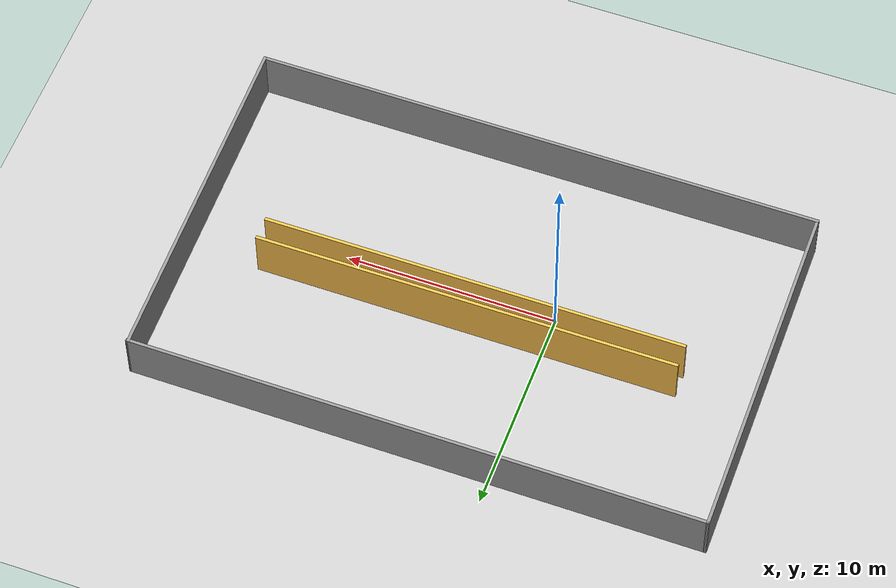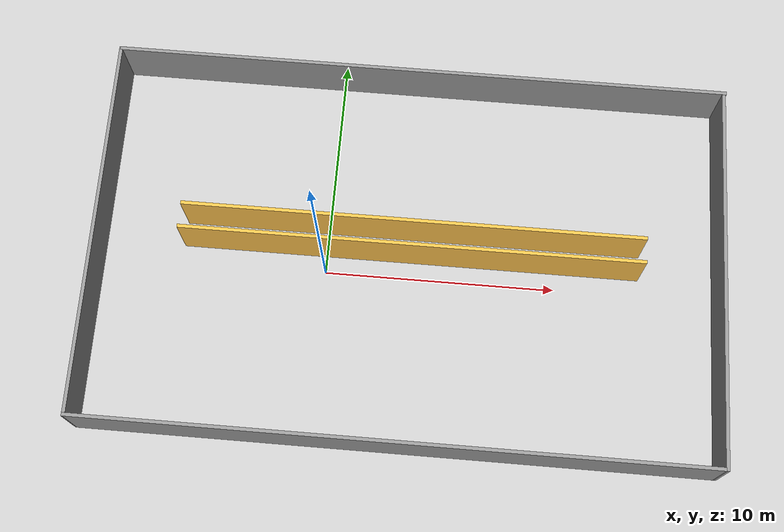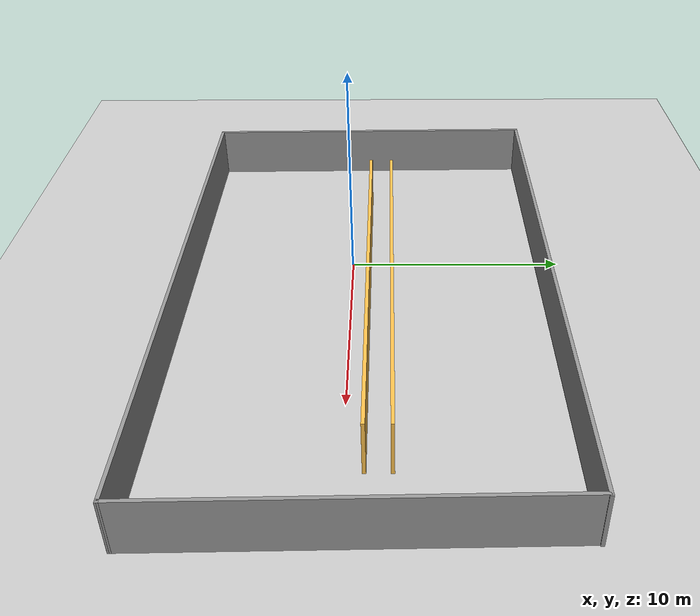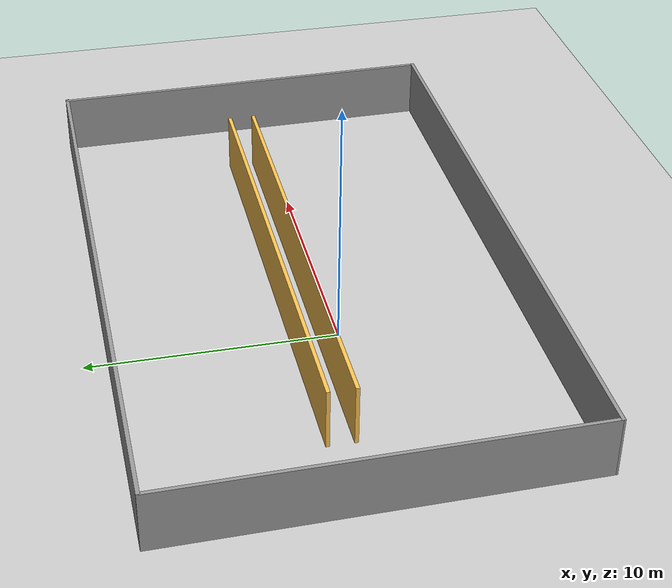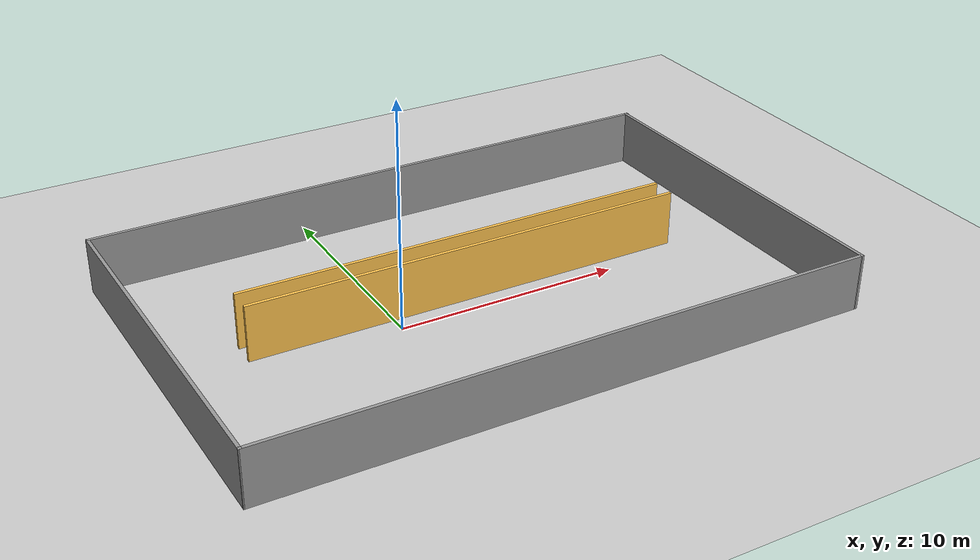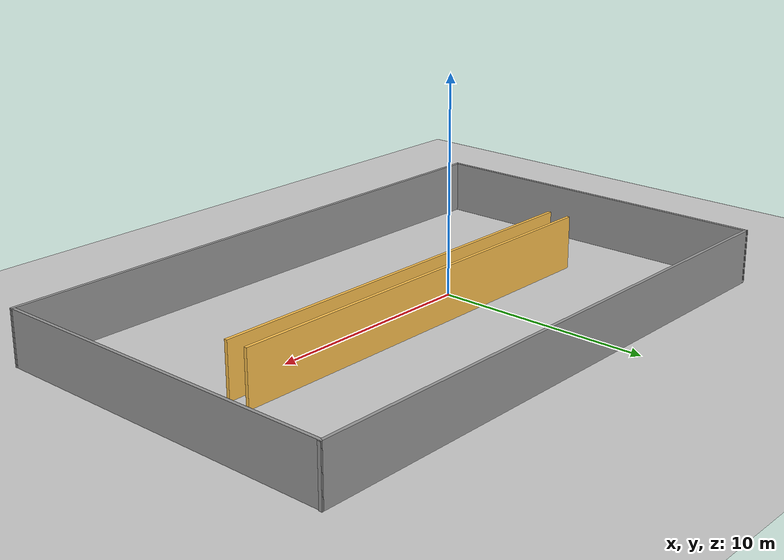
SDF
<sdf version="1.7">
 <world name="default">
  <light name="sun" type="directional">
   <pose>0 0 10 0 -0 0</pose>
   <diffuse>0.8 0.8 0.8 1</diffuse>
   <specular>0.2 0.2 0.2 1</specular>
   <attenuation>
    <range>1000</range>
    <constant>0.9</constant>
    <linear>0.01</linear>
    <quadratic>0.001</quadratic>
   </attenuation>
   <direction>-0.5 0.1 -0.9</direction>
   <spot><inner_angle>0</inner_angle><outer_angle>0</outer_angle><falloff>0</falloff></spot>
  </light>
  <model name="ground_plane">
   <static>1</static>
   <link name="link">
    <collision name="collision">
     <geometry><plane><normal>0 0 1</normal><size>100 100</size></plane></geometry>
     <surface>
      <contact><collide_bitmask>65535</collide_bitmask></contact>
      <friction><ode><mu>100</mu><mu2>50</mu2></ode></friction>
     </surface>
    </collision>
    <visual name="visual">
     <cast_shadows>0</cast_shadows>
     <geometry><plane><normal>0 0 1</normal><size>100 100</size></plane></geometry>
     <material>
      <script><uri>file://media/materials/scripts/gazebo.material</uri><name>Gazebo/Grey</name></script>
     </material>
    </visual>
   </link>
  </model>
  <gravity>0 0 -9.8</gravity>
  <magnetic_field>6e-06 2.3e-05 -4.2e-05</magnetic_field>
  <atmosphere type="adiabatic"/>
  <physics type="ode">
   <max_step_size>0.001</max_step_size>
   <real_time_factor>1</real_time_factor>
   <real_time_update_rate>1000</real_time_update_rate>
  </physics>
  <scene><ambient>0.4 0.4 0.4 1</ambient><background>0.7 0.7 0.7 1</background><shadows>1</shadows></scene>
  <spherical_coordinates>
   <surface_model>EARTH_WGS84</surface_model>
   <latitude_deg>0</latitude_deg>
   <longitude_deg>0</longitude_deg>
   <elevation>0</elevation>
   <heading_deg>0</heading_deg>
  </spherical_coordinates>
  <model name="wall">
   <pose>3.66791 0.979391 0 0 -0 0</pose>
   <link name="Wall_27">
    <collision name="Wall_27_Collision">
     <geometry><box><size>20 0.15 2.5</size></box></geometry>
     <pose>0 0 1.25 0 -0 0</pose>
    </collision>
    <visual name="Wall_27_Visual">
     <pose>0 0 1.25 0 -0 0</pose>
     <geometry><box><size>20 0.15 2.5</size></box></geometry>
     <material>
      <script><uri>file://media/materials/scripts/gazebo.material</uri><name>Gazebo/Grey</name></script>
      <ambient>1 0.764706 0.305882 1</ambient>
     </material>
     <meta><layer>0</layer></meta>
    </visual>
    <pose>-0.004152 -0.16043 0 0 -0 0</pose>
   </link>
   <link name="Wall_29">
    <collision name="Wall_29_Collision">
     <geometry><box><size>20 0.15 2.5</size></box></geometry>
     <pose>0 0 1.25 0 -0 0</pose>
    </collision>
    <visual name="Wall_29_Visual">
     <pose>0 0 1.25 0 -0 0</pose>
     <geometry><box><size>20 0.15 2.5</size></box></geometry>
     <material>
      <script><uri>file://media/materials/scripts/gazebo.material</uri><name>Gazebo/Grey</name></script>
      <ambient>1 0.764706 0.305882 1</ambient>
     </material>
     <meta><layer>0</layer></meta>
    </visual>
    <pose>0.004152 0.904391 0 0 -0 0</pose>
   </link>
   <static>1</static>
  </model>
  <model name="Untitled">
   <pose>3.53934 0.67007 0 0 -0 0</pose>
   <link name="Wall_5">
    <collision name="Wall_5_Collision">
     <geometry><box><size>27.0233 0.15 2.5</size></box></geometry>
     <pose>0 0 1.25 0 -0 0</pose>
    </collision>
    <visual name="Wall_5_Visual">
     <pose>0 0 1.25 0 -0 0</pose>
     <geometry><box><size>27.0233 0.15 2.5</size></box></geometry>
     <material>
      <script><uri>file://media/materials/scripts/gazebo.material</uri><name>Gazebo/Grey</name></script>
      <ambient>1 1 1 1</ambient>
     </material>
     <meta><layer>0</layer></meta>
    </visual>
    <pose>0.101138 -8.29322 0 0 -0 -0.001138</pose>
   </link>
   <link name="Wall_6">
    <collision name="Wall_6_Collision">
     <geometry><box><size>16.7369 0.15 2.5</size></box></geometry>
     <pose>0 0 1.25 0 -0 0</pose>
    </collision>
    <visual name="Wall_6_Visual">
     <pose>0 0 1.25 0 -0 0</pose>
     <geometry><box><size>16.7369 0.15 2.5</size></box></geometry>
     <material>
      <script><uri>file://media/materials/scripts/gazebo.material</uri><name>Gazebo/Grey</name></script>
      <ambient>1 1 1 1</ambient>
     </material>
     <meta><layer>0</layer></meta>
    </visual>
    <pose>13.4366 -0.015295 0 0 -0 1.58299</pose>
   </link>
   <link name="Wall_7">
    <collision name="Wall_7_Collision">
     <geometry><box><size>27.0233 0.15 2.5</size></box></geometry>
     <pose>0 0 1.25 0 -0 0</pose>
    </collision>
    <visual name="Wall_7_Visual">
     <pose>0 0 1.25 0 -0 0</pose>
     <geometry><box><size>27.0233 0.15 2.5</size></box></geometry>
     <material>
      <script><uri>file://media/materials/scripts/gazebo.material</uri><name>Gazebo/Grey</name></script>
      <ambient>1 1 1 1</ambient>
     </material>
     <meta><layer>0</layer></meta>
    </visual>
    <pose>-0.060685 8.29322 0 0 -0 3.14045</pose>
   </link>
   <link name="Wall_8">
    <collision name="Wall_8_Collision">
     <geometry><box><size>16.7369 0.15 2.5</size></box></geometry>
     <pose>0 0 1.25 0 -0 0</pose>
    </collision>
    <visual name="Wall_8_Visual">
     <pose>0 0 1.25 0 -0 0</pose>
     <geometry><box><size>16.7369 0.15 2.5</size></box></geometry>
     <material>
      <script><uri>file://media/materials/scripts/gazebo.material</uri><name>Gazebo/Grey</name></script>
      <ambient>1 1 1 1</ambient>
     </material>
     <meta><layer>0</layer></meta>
    </visual>
    <pose>-13.4366 0.015295 0 0 -0 -1.5586</pose>
   </link>
   <static>1</static>
  </model>
 </world>
</sdf>
